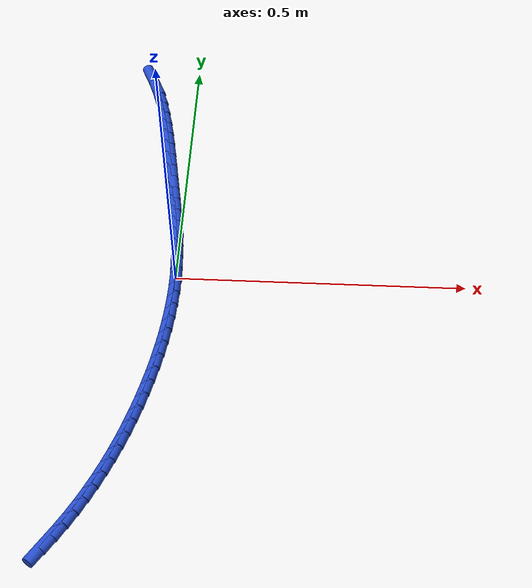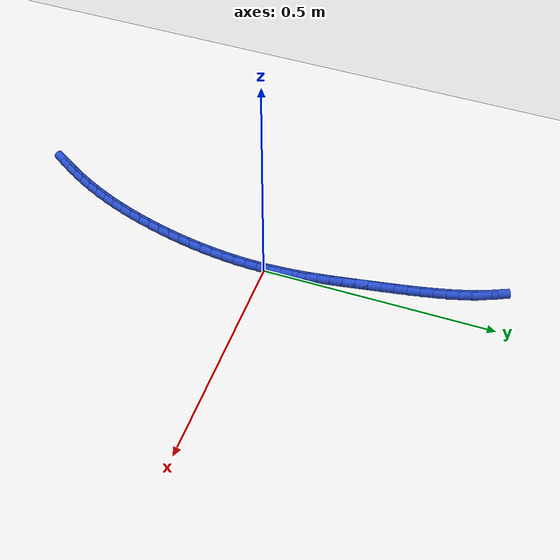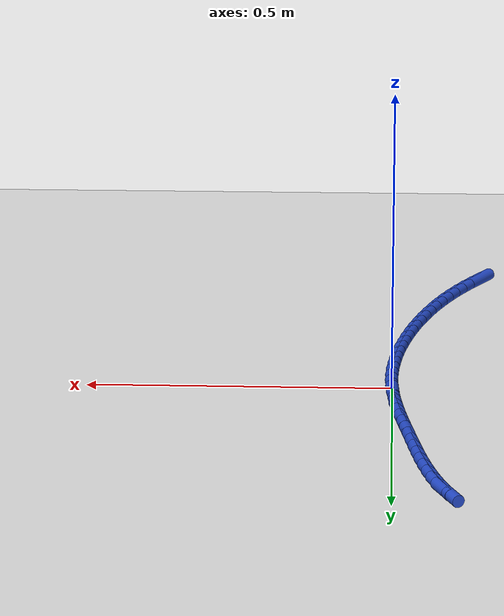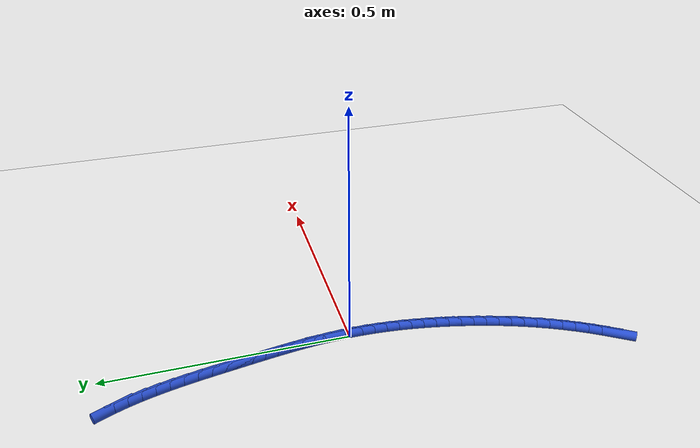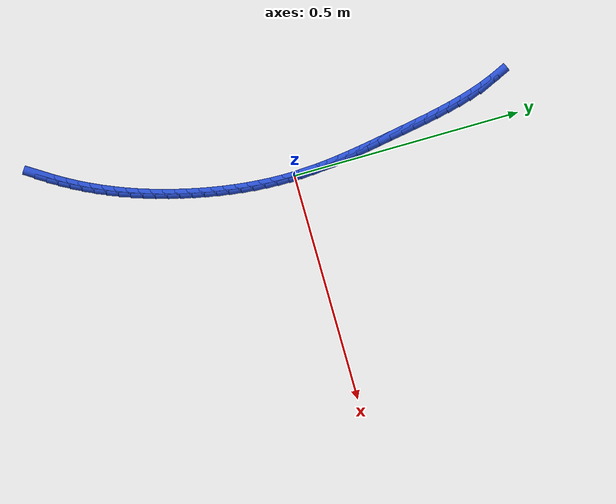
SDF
<sdf version="1.6">
 <world name="default">
  <model name="ground_plane">
   <static>1</static>
   <link name="link">
    <collision name="collision">
     <geometry><plane><normal>0 0 1</normal><size>100 100</size></plane></geometry>
     <surface><friction><ode><mu>100</mu><mu2>50</mu2></ode></friction></surface>
    </collision>
    <visual name="visual">
     <cast_shadows>0</cast_shadows>
     <geometry><plane><normal>0 0 1</normal><size>100 100</size></plane></geometry>
     <material>
      <script><uri>file://media/materials/scripts/gazebo.material</uri><name>Gazebo/WhiteGlow</name></script>
     </material>
    </visual>
   </link>
  </model>
  <model name="line">
   <link name="link_0">
    <pose>4.336808689942018e-18 5.551115123125783e-17 0.01 0 1.57 -1.5379100877895757</pose>
    <collision name="collision">
     <geometry><cylinder><radius>0.01</radius><length>0.08</length></cylinder></geometry>
    </collision>
    <visual name="visual">
     <material>
      <script><name>Gazebo/Blue</name><uri>file://media/materials/scripts/gazebo.material</uri></script>
     </material>
     <geometry><cylinder><radius>0.01</radius><length>0.08</length></cylinder></geometry>
    </visual>
   </link>
   <link name="link_1">
    <pose>-0.0008520861090104348 0.0259007698734091 0.01 0 1.57 -1.5074474729927114</pose>
    <collision name="collision">
     <geometry><cylinder><radius>0.01</radius><length>0.08</length></cylinder></geometry>
    </collision>
    <visual name="visual">
     <material>
      <script><name>Gazebo/Blue</name><uri>file://media/materials/scripts/gazebo.material</uri></script>
     </material>
     <geometry><cylinder><radius>0.01</radius><length>0.08</length></cylinder></geometry>
    </visual>
   </link>
   <link name="link_2">
    <pose>-0.002491036457328171 0.05173797531334401 0.01 0 1.57 -1.480697998751893</pose>
    <collision name="collision">
     <geometry><cylinder><radius>0.01</radius><length>0.08</length></cylinder></geometry>
    </collision>
    <visual name="visual">
     <material>
      <script><name>Gazebo/Blue</name><uri>file://media/materials/scripts/gazebo.material</uri></script>
     </material>
     <geometry><cylinder><radius>0.01</radius><length>0.08</length></cylinder></geometry>
    </visual>
   </link>
   <link name="link_3">
    <pose>-0.004822410297093209 0.07754380326106165 0.01 0 1.57 -1.4577683714966108</pose>
    <collision name="collision">
     <geometry><cylinder><radius>0.01</radius><length>0.08</length></cylinder></geometry>
    </collision>
    <visual name="visual">
     <material>
      <script><name>Gazebo/Blue</name><uri>file://media/materials/scripts/gazebo.material</uri></script>
     </material>
     <geometry><cylinder><radius>0.01</radius><length>0.08</length></cylinder></geometry>
    </visual>
   </link>
   <link name="link_4">
    <pose>-0.007751766880445566 0.10335044065781888 0.01 0 1.57 -1.4387157896080138</pose>
    <collision name="collision">
     <geometry><cylinder><radius>0.01</radius><length>0.08</length></cylinder></geometry>
    </collision>
    <visual name="visual">
     <material>
      <script><name>Gazebo/Blue</name><uri>file://media/materials/scripts/gazebo.material</uri></script>
     </material>
     <geometry><cylinder><radius>0.01</radius><length>0.08</length></cylinder></geometry>
    </visual>
   </link>
   <link name="link_5">
    <pose>-0.011184665459525256 0.1291900744448726 0.01 0 1.57 -1.4235574689396657</pose>
    <collision name="collision">
     <geometry><cylinder><radius>0.01</radius><length>0.08</length></cylinder></geometry>
    </collision>
    <visual name="visual">
     <material>
      <script><name>Gazebo/Blue</name><uri>file://media/materials/scripts/gazebo.material</uri></script>
     </material>
     <geometry><cylinder><radius>0.01</radius><length>0.08</length></cylinder></geometry>
    </visual>
   </link>
   <link name="link_6">
    <pose>-0.015026665286472288 0.15509489156347964 0.01 0 1.57 -1.4122794236529297</pose>
    <collision name="collision">
     <geometry><cylinder><radius>0.01</radius><length>0.08</length></cylinder></geometry>
    </collision>
    <visual name="visual">
     <material>
      <script><name>Gazebo/Blue</name><uri>file://media/materials/scripts/gazebo.material</uri></script>
     </material>
     <geometry><cylinder><radius>0.01</radius><length>0.08</length></cylinder></geometry>
    </visual>
   </link>
   <link name="link_7">
    <pose>-0.019183325613426686 0.1810970789548969 0.01 0 1.57 -1.4048439143615312</pose>
    <collision name="collision">
     <geometry><cylinder><radius>0.01</radius><length>0.08</length></cylinder></geometry>
    </collision>
    <visual name="visual">
     <material>
      <script><name>Gazebo/Blue</name><uri>file://media/materials/scripts/gazebo.material</uri></script>
     </material>
     <geometry><cylinder><radius>0.01</radius><length>0.08</length></cylinder></geometry>
    </visual>
   </link>
   <link name="link_8">
    <pose>-0.02356020569252844 0.20722882356038114 0.01 0 1.57 -1.401195258315955</pose>
    <collision name="collision">
     <geometry><cylinder><radius>0.01</radius><length>0.08</length></cylinder></geometry>
    </collision>
    <visual name="visual">
     <material>
      <script><name>Gazebo/Blue</name><uri>file://media/materials/scripts/gazebo.material</uri></script>
     </material>
     <geometry><cylinder><radius>0.01</radius><length>0.08</length></cylinder></geometry>
    </visual>
   </link>
   <link name="link_9">
    <pose>-0.028062864775917587 0.23352231232118936 0.01 0 1.57 -1.4005227654413412</pose>
    <collision name="collision">
     <geometry><cylinder><radius>0.01</radius><length>0.08</length></cylinder></geometry>
    </collision>
    <visual name="visual">
     <material>
      <script><name>Gazebo/Blue</name><uri>file://media/materials/scripts/gazebo.material</uri></script>
     </material>
     <geometry><cylinder><radius>0.01</radius><length>0.08</length></cylinder></geometry>
    </visual>
   </link>
   <link name="link_10">
    <pose>-0.032615106125894626 0.25999830504153576 0.01 0 1.57 -1.3969650446520663</pose>
    <collision name="collision">
     <geometry><cylinder><radius>0.01</radius><length>0.08</length></cylinder></geometry>
    </collision>
    <visual name="visual">
     <material>
      <script><name>Gazebo/Blue</name><uri>file://media/materials/scripts/gazebo.material</uri></script>
     </material>
     <geometry><cylinder><radius>0.01</radius><length>0.08</length></cylinder></geometry>
    </visual>
   </link>
   <link name="link_11">
    <pose>-0.03728429017498857 0.28658764448200225 0.01 0 1.57 -1.3877890538961433</pose>
    <collision name="collision">
     <geometry><cylinder><radius>0.01</radius><length>0.08</length></cylinder></geometry>
    </collision>
    <visual name="visual">
     <material>
      <script><name>Gazebo/Blue</name><uri>file://media/materials/scripts/gazebo.material</uri></script>
     </material>
     <geometry><cylinder><radius>0.01</radius><length>0.08</length></cylinder></geometry>
    </visual>
   </link>
   <link name="link_12">
    <pose>-0.04220569914650027 0.3131786305847607 0.01 0 1.57 -1.3729220412109868</pose>
    <collision name="collision">
     <geometry><cylinder><radius>0.01</radius><length>0.08</length></cylinder></geometry>
    </collision>
    <visual name="visual">
     <material>
      <script><name>Gazebo/Blue</name><uri>file://media/materials/scripts/gazebo.material</uri></script>
     </material>
     <geometry><cylinder><radius>0.01</radius><length>0.08</length></cylinder></geometry>
    </visual>
   </link>
   <link name="link_13">
    <pose>-0.04751502027715108 0.3396593096117989 0.01 0 1.57 -1.35221025343579</pose>
    <collision name="collision">
     <geometry><cylinder><radius>0.01</radius><length>0.08</length></cylinder></geometry>
    </collision>
    <visual name="visual">
     <material>
      <script><name>Gazebo/Blue</name><uri>file://media/materials/scripts/gazebo.material</uri></script>
     </material>
     <geometry><cylinder><radius>0.01</radius><length>0.08</length></cylinder></geometry>
    </visual>
   </link>
   <link name="link_14">
    <pose>-0.053347940803662376 0.36591772782510434 0.01 0 1.57 -1.3254126780202675</pose>
    <collision name="collision">
     <geometry><cylinder><radius>0.01</radius><length>0.08</length></cylinder></geometry>
    </collision>
    <visual name="visual">
     <material>
      <script><name>Gazebo/Blue</name><uri>file://media/materials/scripts/gazebo.material</uri></script>
     </material>
     <geometry><cylinder><radius>0.01</radius><length>0.08</length></cylinder></geometry>
    </visual>
   </link>
   <link name="link_15">
    <pose>-0.05984014796275553 0.39184193148666485 0.01 0 1.57 -1.2922157415899456</pose>
    <collision name="collision">
     <geometry><cylinder><radius>0.01</radius><length>0.08</length></cylinder></geometry>
    </collision>
    <visual name="visual">
     <material>
      <script><name>Gazebo/Blue</name><uri>file://media/materials/scripts/gazebo.material</uri></script>
     </material>
     <geometry><cylinder><radius>0.01</radius><length>0.08</length></cylinder></geometry>
    </visual>
   </link>
   <link name="link_16">
    <pose>-0.06712732899115192 0.41731996685846817 0.01 0 1.57 -1.2522561096804858</pose>
    <collision name="collision">
     <geometry><cylinder><radius>0.01</radius><length>0.08</length></cylinder></geometry>
    </collision>
    <visual name="visual">
     <material>
      <script><name>Gazebo/Blue</name><uri>file://media/materials/scripts/gazebo.material</uri></script>
     </material>
     <geometry><cylinder><radius>0.01</radius><length>0.08</length></cylinder></geometry>
    </visual>
   </link>
   <link name="link_17">
    <pose>-0.07534517112557293 0.44223988020250193 0.01 0 1.57 -1.2051562475896969</pose>
    <collision name="collision">
     <geometry><cylinder><radius>0.01</radius><length>0.08</length></cylinder></geometry>
    </collision>
    <visual name="visual">
     <material>
      <script><name>Gazebo/Blue</name><uri>file://media/materials/scripts/gazebo.material</uri></script>
     </material>
     <geometry><cylinder><radius>0.01</radius><length>0.08</length></cylinder></geometry>
    </visual>
   </link>
   <link name="link_18">
    <pose>-0.0846293616027399 0.4664897177807539 0.01 0 1.57 -1.150577957239863</pose>
    <collision name="collision">
     <geometry><cylinder><radius>0.01</radius><length>0.08</length></cylinder></geometry>
    </collision>
    <visual name="visual">
     <material>
      <script><name>Gazebo/Blue</name><uri>file://media/materials/scripts/gazebo.material</uri></script>
     </material>
     <geometry><cylinder><radius>0.01</radius><length>0.08</length></cylinder></geometry>
    </visual>
   </link>
   <link name="link_239">
    <pose>-0.14979202532823213 -0.5225621581363312 0.01 0 1.57 0.9964151217068816</pose>
    <collision name="collision">
     <geometry><cylinder><radius>0.01</radius><length>0.08</length></cylinder></geometry>
    </collision>
    <visual name="visual">
     <material>
      <script><name>Gazebo/Blue</name><uri>file://media/materials/scripts/gazebo.material</uri></script>
     </material>
     <geometry><cylinder><radius>0.01</radius><length>0.08</length></cylinder></geometry>
    </visual>
   </link>
   <link name="link_240">
    <pose>-0.13539542450613146 -0.5003165912281546 0.01 0 1.57 1.0312228989047718</pose>
    <collision name="collision">
     <geometry><cylinder><radius>0.01</radius><length>0.08</length></cylinder></geometry>
    </collision>
    <visual name="visual">
     <material>
      <script><name>Gazebo/Blue</name><uri>file://media/materials/scripts/gazebo.material</uri></script>
     </material>
     <geometry><cylinder><radius>0.01</radius><length>0.08</length></cylinder></geometry>
    </visual>
   </link>
   <link name="link_241">
    <pose>-0.12180840915821046 -0.47762807649671063 0.01 0 1.57 1.065566491736546</pose>
    <collision name="collision">
     <geometry><cylinder><radius>0.01</radius><length>0.08</length></cylinder></geometry>
    </collision>
    <visual name="visual">
     <material>
      <script><name>Gazebo/Blue</name><uri>file://media/materials/scripts/gazebo.material</uri></script>
     </material>
     <geometry><cylinder><radius>0.01</radius><length>0.08</length></cylinder></geometry>
    </visual>
   </link>
   <link name="link_242">
    <pose>-0.10904689169353228 -0.4545558921759048 0.01 0 1.57 1.09922782076598</pose>
    <collision name="collision">
     <geometry><cylinder><radius>0.01</radius><length>0.08</length></cylinder></geometry>
    </collision>
    <visual name="visual">
     <material>
      <script><name>Gazebo/Blue</name><uri>file://media/materials/scripts/gazebo.material</uri></script>
     </material>
     <geometry><cylinder><radius>0.01</radius><length>0.08</length></cylinder></geometry>
    </visual>
   </link>
   <link name="link_243">
    <pose>-0.09710666736835175 -0.4311409650027753 0.01 0 1.57 1.131789136145117</pose>
    <collision name="collision">
     <geometry><cylinder><radius>0.01</radius><length>0.08</length></cylinder></geometry>
    </collision>
    <visual name="visual">
     <material>
      <script><name>Gazebo/Blue</name><uri>file://media/materials/scripts/gazebo.material</uri></script>
     </material>
     <geometry><cylinder><radius>0.01</radius><length>0.08</length></cylinder></geometry>
    </visual>
   </link>
   <link name="link_244">
    <pose>-0.08595992665703746 -0.4074026886930143 0.01 0 1.57 1.1631644687293308</pose>
    <collision name="collision">
     <geometry><cylinder><radius>0.01</radius><length>0.08</length></cylinder></geometry>
    </collision>
    <visual name="visual">
     <material>
      <script><name>Gazebo/Blue</name><uri>file://media/materials/scripts/gazebo.material</uri></script>
     </material>
     <geometry><cylinder><radius>0.01</radius><length>0.08</length></cylinder></geometry>
    </visual>
   </link>
   <link name="link_245">
    <pose>-0.07557751330433202 -0.3833592284333683 0.01 0 1.57 1.1933034645203098</pose>
    <collision name="collision">
     <geometry><cylinder><radius>0.01</radius><length>0.08</length></cylinder></geometry>
    </collision>
    <visual name="visual">
     <material>
      <script><name>Gazebo/Blue</name><uri>file://media/materials/scripts/gazebo.material</uri></script>
     </material>
     <geometry><cylinder><radius>0.01</radius><length>0.08</length></cylinder></geometry>
    </visual>
   </link>
   <link name="link_246">
    <pose>-0.06593027105497876 -0.35902874941058566 0.01 0 1.57 1.2221683880055236</pose>
    <collision name="collision">
     <geometry><cylinder><radius>0.01</radius><length>0.08</length></cylinder></geometry>
    </collision>
    <visual name="visual">
     <material>
      <script><name>Gazebo/Blue</name><uri>file://media/materials/scripts/gazebo.material</uri></script>
     </material>
     <geometry><cylinder><radius>0.01</radius><length>0.08</length></cylinder></geometry>
    </visual>
   </link>
   <link name="link_247">
    <pose>-0.05698904365372025 -0.334429416811413 0.01 0 1.57 1.2497330264598003</pose>
    <collision name="collision">
     <geometry><cylinder><radius>0.01</radius><length>0.08</length></cylinder></geometry>
    </collision>
    <visual name="visual">
     <material>
      <script><name>Gazebo/Blue</name><uri>file://media/materials/scripts/gazebo.material</uri></script>
     </material>
     <geometry><cylinder><radius>0.01</radius><length>0.08</length></cylinder></geometry>
    </visual>
   </link>
   <link name="link_248">
    <pose>-0.0487246748452993 -0.3095793958225977 0.01 0 1.57 1.2759814353163623</pose>
    <collision name="collision">
     <geometry><cylinder><radius>0.01</radius><length>0.08</length></cylinder></geometry>
    </collision>
    <visual name="visual">
     <material>
      <script><name>Gazebo/Blue</name><uri>file://media/materials/scripts/gazebo.material</uri></script>
     </material>
     <geometry><cylinder><radius>0.01</radius><length>0.08</length></cylinder></geometry>
    </visual>
   </link>
   <link name="link_249">
    <pose>-0.04110800837445874 -0.2844968516308869 0.01 0 1.57 1.3009065986693678</pose>
    <collision name="collision">
     <geometry><cylinder><radius>0.01</radius><length>0.08</length></cylinder></geometry>
    </collision>
    <visual name="visual">
     <material>
      <script><name>Gazebo/Blue</name><uri>file://media/materials/scripts/gazebo.material</uri></script>
     </material>
     <geometry><cylinder><radius>0.01</radius><length>0.08</length></cylinder></geometry>
    </visual>
   </link>
   <link name="link_250">
    <pose>-0.034109887985941424 -0.2591999494230279 0.01 0 1.57 1.3245129814981693</pose>
    <collision name="collision">
     <geometry><cylinder><radius>0.01</radius><length>0.08</length></cylinder></geometry>
    </collision>
    <visual name="visual">
     <material>
      <script><name>Gazebo/Blue</name><uri>file://media/materials/scripts/gazebo.material</uri></script>
     </material>
     <geometry><cylinder><radius>0.01</radius><length>0.08</length></cylinder></geometry>
    </visual>
   </link>
   <link name="link_251">
    <pose>-0.02770126880829756 -0.23370687544018032 0.01 0 1.57 1.347469610304988</pose>
    <collision name="collision">
     <geometry><cylinder><radius>0.01</radius><length>0.08</length></cylinder></geometry>
    </collision>
    <visual name="visual">
     <material>
      <script><name>Gazebo/Blue</name><uri>file://media/materials/scripts/gazebo.material</uri></script>
     </material>
     <geometry><cylinder><radius>0.01</radius><length>0.08</length></cylinder></geometry>
    </visual>
   </link>
   <link name="link_252">
    <pose>-0.021871785320631 -0.20803934680253253 0.01 0 1.57 1.371216144875318</pose>
    <collision name="collision">
     <geometry><cylinder><radius>0.01</radius><length>0.08</length></cylinder></geometry>
    </collision>
    <visual name="visual">
     <material>
      <script><name>Gazebo/Blue</name><uri>file://media/materials/scripts/gazebo.material</uri></script>
     </material>
     <geometry><cylinder><radius>0.01</radius><length>0.08</length></cylinder></geometry>
    </visual>
   </link>
   <link name="link_253">
    <pose>-0.016650552037491814 -0.18222654337523717 0.01 0 1.57 1.3959995521520463</pose>
    <collision name="collision">
     <geometry><cylinder><radius>0.01</radius><length>0.08</length></cylinder></geometry>
    </collision>
    <visual name="visual">
     <material>
      <script><name>Gazebo/Blue</name><uri>file://media/materials/scripts/gazebo.material</uri></script>
     </material>
     <geometry><cylinder><radius>0.01</radius><length>0.08</length></cylinder></geometry>
    </visual>
   </link>
   <link name="link_254">
    <pose>-0.012071700806709844 -0.15629859342884095 0.01 0 1.57 1.421891637601343</pose>
    <collision name="collision">
     <geometry><cylinder><radius>0.01</radius><length>0.08</length></cylinder></geometry>
    </collision>
    <visual name="visual">
     <material>
      <script><name>Gazebo/Blue</name><uri>file://media/materials/scripts/gazebo.material</uri></script>
     </material>
     <geometry><cylinder><radius>0.01</radius><length>0.08</length></cylinder></geometry>
    </visual>
   </link>
   <link name="link_255">
    <pose>-0.008169363476115101 -0.13028562523389128 0.01 0 1.57 1.4489648899787908</pose>
    <collision name="collision">
     <geometry><cylinder><radius>0.01</radius><length>0.08</length></cylinder></geometry>
    </collision>
    <visual name="visual">
     <material>
      <script><name>Gazebo/Blue</name><uri>file://media/materials/scripts/gazebo.material</uri></script>
     </material>
     <geometry><cylinder><radius>0.01</radius><length>0.08</length></cylinder></geometry>
    </visual>
   </link>
   <link name="link_256">
    <pose>-0.004977671893537587 -0.1042177670609355 0.01 0 1.57 1.4772917790365203</pose>
    <collision name="collision">
     <geometry><cylinder><radius>0.01</radius><length>0.08</length></cylinder></geometry>
    </collision>
    <visual name="visual">
     <material>
      <script><name>Gazebo/Blue</name><uri>file://media/materials/scripts/gazebo.material</uri></script>
     </material>
     <geometry><cylinder><radius>0.01</radius><length>0.08</length></cylinder></geometry>
    </visual>
   </link>
   <link name="link_257">
    <pose>-0.0025307579068073087 -0.07812514718052108 0.01 0 1.57 1.5069438005235214</pose>
    <collision name="collision">
     <geometry><cylinder><radius>0.01</radius><length>0.08</length></cylinder></geometry>
    </collision>
    <visual name="visual">
     <material>
      <script><name>Gazebo/Blue</name><uri>file://media/materials/scripts/gazebo.material</uri></script>
     </material>
     <geometry><cylinder><radius>0.01</radius><length>0.08</length></cylinder></geometry>
    </visual>
   </link>
   <link name="link_258">
    <pose>-0.0008627533637542827 -0.05203789386319544 0.01 0 1.57 1.5379902298530586</pose>
    <collision name="collision">
     <geometry><cylinder><radius>0.01</radius><length>0.08</length></cylinder></geometry>
    </collision>
    <visual name="visual">
     <material>
      <script><name>Gazebo/Blue</name><uri>file://media/materials/scripts/gazebo.material</uri></script>
     </material>
     <geometry><cylinder><radius>0.01</radius><length>0.08</length></cylinder></geometry>
    </visual>
   </link>
   <link name="link_259">
    <pose>-7.790112208511286e-06 -0.025986135379505976 0.01 0 1.57 1.5704965472447103</pose>
    <collision name="collision">
     <geometry><cylinder><radius>0.01</radius><length>0.08</length></cylinder></geometry>
    </collision>
    <visual name="visual">
     <material>
      <script><name>Gazebo/Blue</name><uri>file://media/materials/scripts/gazebo.material</uri></script>
     </material>
     <geometry><cylinder><radius>0.01</radius><length>0.08</length></cylinder></geometry>
    </visual>
   </link>
   <link name="link_260">
    <pose>-1.734723475976807e-18 -7.632783294297951e-17 0.01 0 1.57 -1.5370701505022148</pose>
    <collision name="collision">
     <geometry><cylinder><radius>0.01</radius><length>0.08</length></cylinder></geometry>
    </collision>
    <visual name="visual">
     <material>
      <script><name>Gazebo/Blue</name><uri>file://media/materials/scripts/gazebo.material</uri></script>
     </material>
     <geometry><cylinder><radius>0.01</radius><length>0.08</length></cylinder></geometry>
    </visual>
   </link>
   <link name="link_261">
    <pose>-0.0008735148749587683 0.02589038400477482 0.01 0 1.57 -1.5014728491078486</pose>
    <collision name="collision">
     <geometry><cylinder><radius>0.01</radius><length>0.08</length></cylinder></geometry>
    </collision>
    <visual name="visual">
     <material>
      <script><name>Gazebo/Blue</name><uri>file://media/materials/scripts/gazebo.material</uri></script>
     </material>
     <geometry><cylinder><radius>0.01</radius><length>0.08</length></cylinder></geometry>
    </visual>
   </link>
   <link name="link_262">
    <pose>-0.002662466584914815 0.05165488836427132 0.01 0 1.57 -1.5192985380528146</pose>
    <collision name="collision">
     <geometry><cylinder><radius>0.01</radius><length>0.08</length></cylinder></geometry>
    </collision>
    <visual name="visual">
     <material>
      <script><name>Gazebo/Blue</name><uri>file://media/materials/scripts/gazebo.material</uri></script>
     </material>
     <geometry><cylinder><radius>0.01</radius><length>0.08</length></cylinder></geometry>
    </visual>
   </link>
  </model>
 </world>
</sdf>
